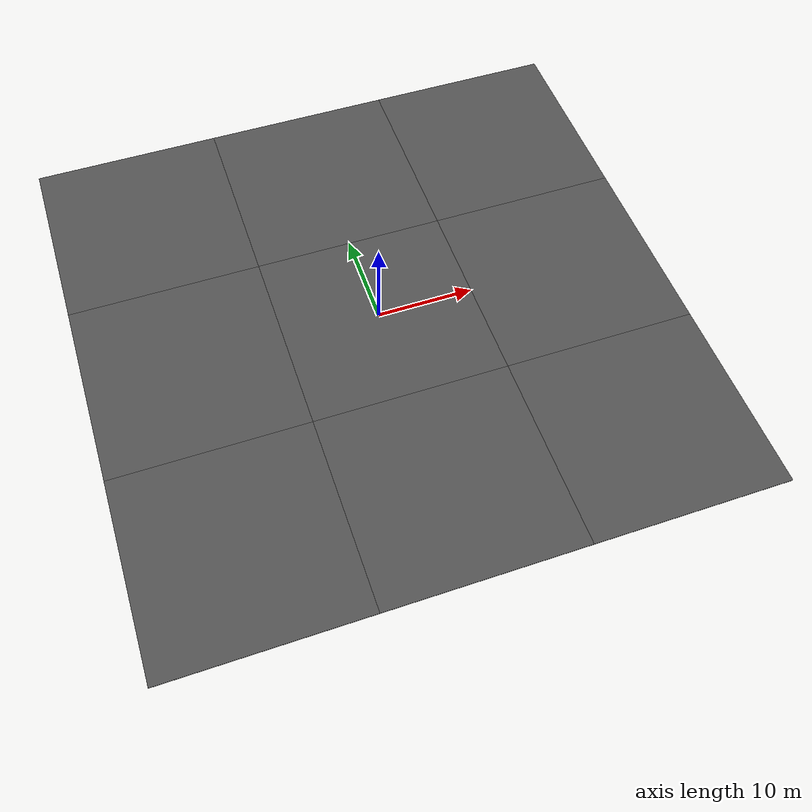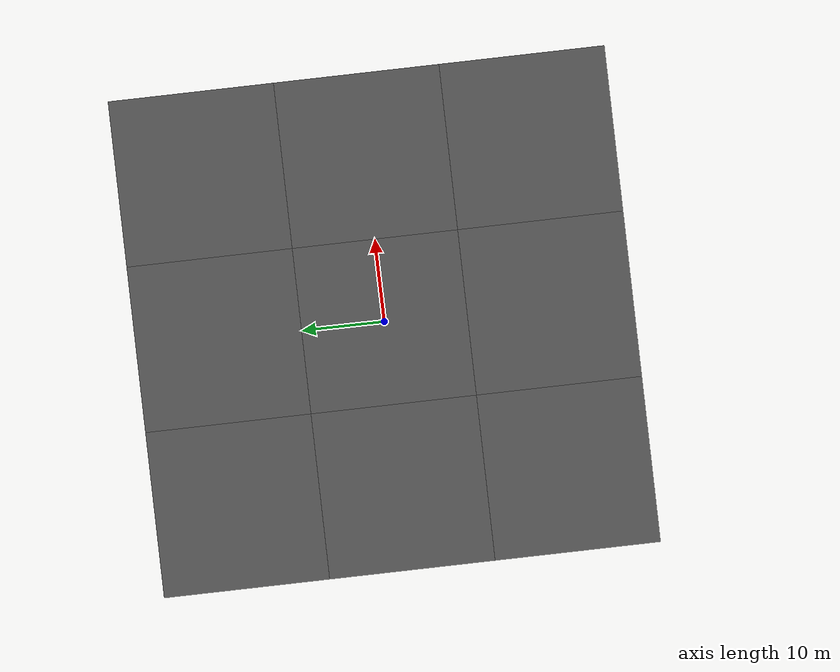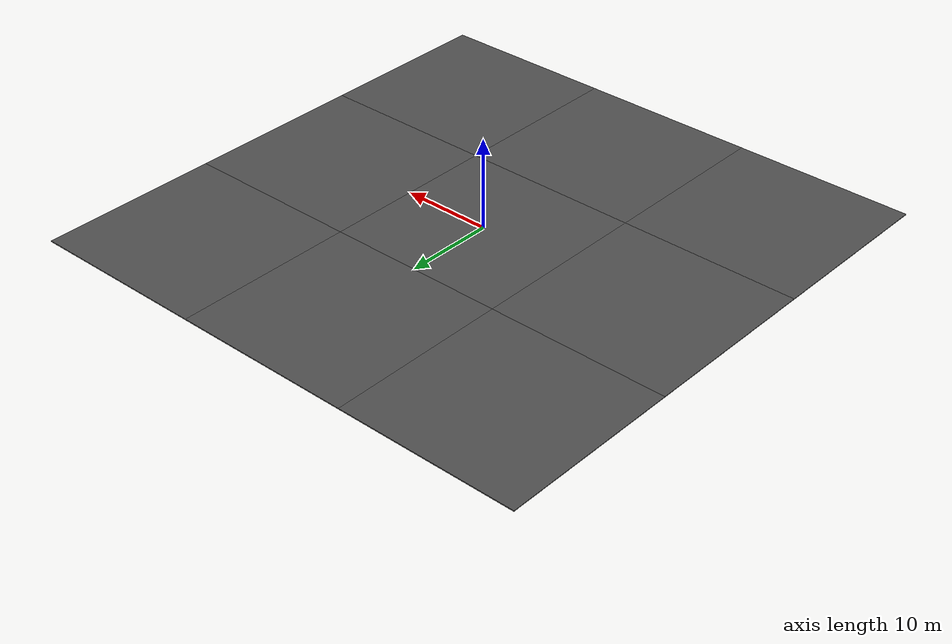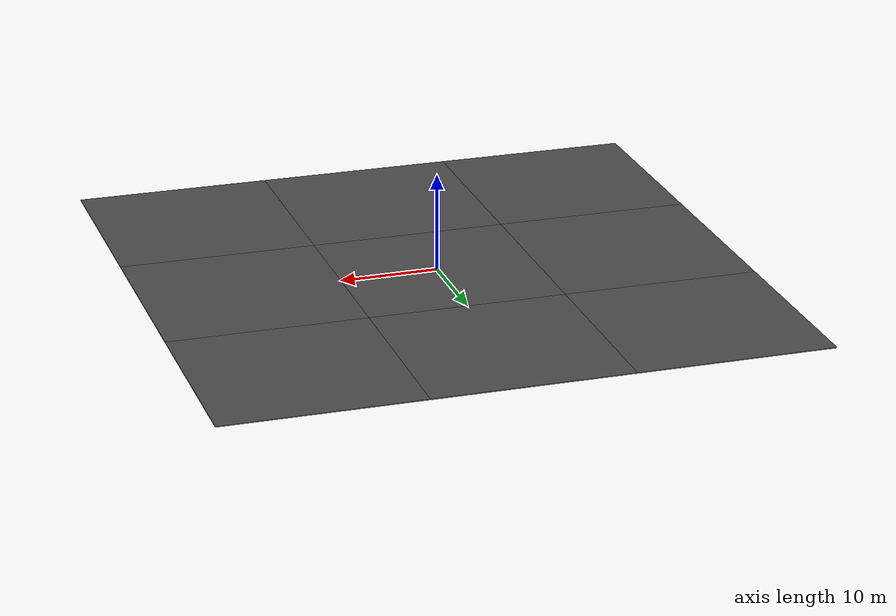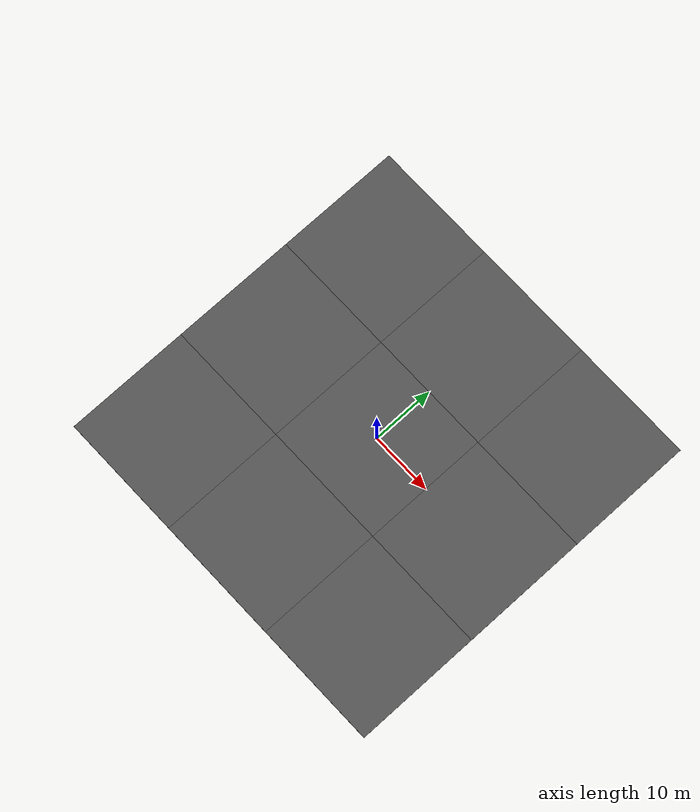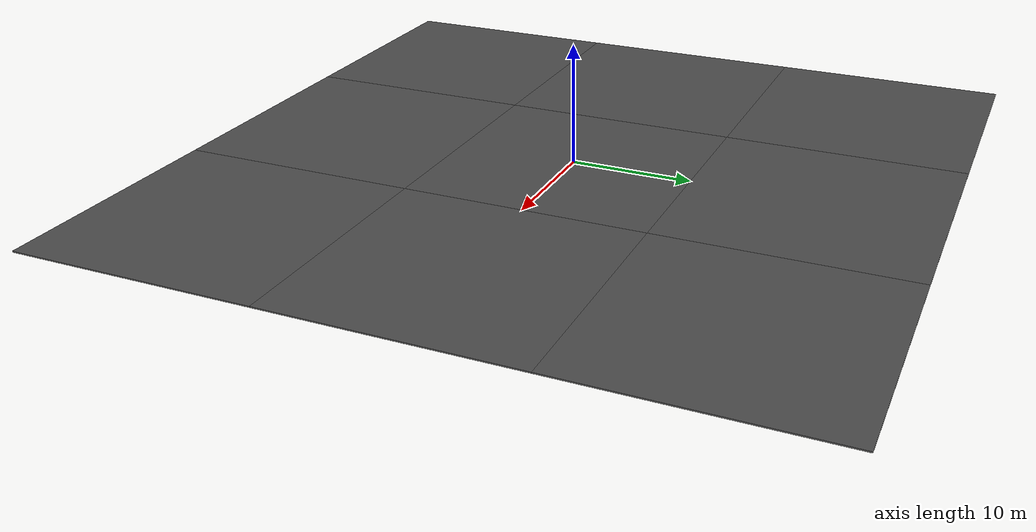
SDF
<sdf version="1.4">
 <world name="default">
  <scene><ambient>0.5 0.5 0.5 1</ambient><background>0.5 0.5 0.5 1</background><shadows>0</shadows></scene>
  <physics type="ode">
   <gravity>0 0 -9.8</gravity>
   <ode>
    <solver><type>quick</type><iters>10</iters><sor>1.3</sor></solver>
    <constraints>
     <cfm>0</cfm>
     <erp>0.2</erp>
     <contact_max_correcting_vel>100</contact_max_correcting_vel>
     <contact_surface_layer>0.001</contact_surface_layer>
    </constraints>
   </ode>
   <real_time_update_rate>250</real_time_update_rate>
   <max_step_size>0.004</max_step_size>
   <real_time_factor>1</real_time_factor>
  </physics>
  <model name="plane1_model">
   <link name="body">
    <collision name="geom_1">
     <geometry><plane><normal>0 0 1</normal><size>1 1</size></plane></geometry>
     <surface>
      <friction><ode><mu>10</mu><mu2>10</mu2><fdir1>0 0 0</fdir1><slip1>0</slip1><slip2>0</slip2></ode></friction>
      <bounce><restitution_coefficient>0</restitution_coefficient><threshold>1e+06</threshold></bounce>
      <contact>
       <ode>
        <soft_cfm>0</soft_cfm>
        <soft_erp>0.2</soft_erp>
        <kp>1e+10</kp>
        <kd>1</kd>
        <max_vel>100</max_vel>
        <min_depth>0.0001</min_depth>
       </ode>
      </contact>
     </surface>
    </collision>
    <visual name="visual_1">
     <geometry><plane><normal>0 0 1</normal><size>1 1</size></plane></geometry>
     <material><script><uri>__default__</uri><name>__default__</name></script></material>
     <cast_shadows>0</cast_shadows>
    </visual>
    <velocity_decay><linear>0</linear><angular>0</angular></velocity_decay>
   </link>
   <static>1</static>
  </model>
  <light name="my_light" type="directional">
   <pose>0 0 30 0 -0 0</pose>
   <diffuse>0.9 0.9 0.9 1</diffuse>
   <specular>0.1 0.1 0.1 1</specular>
   <attenuation><range>20</range></attenuation>
   <direction>0 0 -1</direction>
   <cast_shadows>0</cast_shadows>
  </light>
  <spherical_coordinates>
   <surface_model>EARTH_WGS84</surface_model>
   <latitude_deg>0</latitude_deg>
   <longitude_deg>0</longitude_deg>
   <elevation>0</elevation>
   <heading_deg>0</heading_deg>
  </spherical_coordinates>
  <model name="asphalt_plane_1">
   <static>1</static>
   <link name="link">
    <collision name="collision"><geometry><box><size>20 20 0.1</size></box></geometry></collision>
    <visual name="visual">
     <cast_shadows>0</cast_shadows>
     <geometry><box><size>20 20 0.1</size></box></geometry>
     <material>
      <script>
       <uri>model://asphalt_plane/materials/scripts</uri>
       <uri>model://asphalt_plane/materials/textures</uri>
       <name>vrc/asphalt</name>
      </script>
     </material>
    </visual>
    <velocity_decay><linear>0</linear><angular>0</angular></velocity_decay>
   </link>
   <pose>20 0 0 0 -0 0</pose>
  </model>
  <model name="asphalt_plane_2">
   <static>1</static>
   <link name="link">
    <collision name="collision"><geometry><box><size>20 20 0.1</size></box></geometry></collision>
    <visual name="visual">
     <cast_shadows>0</cast_shadows>
     <geometry><box><size>20 20 0.1</size></box></geometry>
     <material>
      <script>
       <uri>model://asphalt_plane/materials/scripts</uri>
       <uri>model://asphalt_plane/materials/textures</uri>
       <name>vrc/asphalt</name>
      </script>
     </material>
    </visual>
    <velocity_decay><linear>0</linear><angular>0</angular></velocity_decay>
   </link>
   <pose>20 -20 0 0 -0 0</pose>
  </model>
  <model name="asphalt_plane_3">
   <static>1</static>
   <link name="link">
    <collision name="collision"><geometry><box><size>20 20 0.1</size></box></geometry></collision>
    <visual name="visual">
     <cast_shadows>0</cast_shadows>
     <geometry><box><size>20 20 0.1</size></box></geometry>
     <material>
      <script>
       <uri>model://asphalt_plane/materials/scripts</uri>
       <uri>model://asphalt_plane/materials/textures</uri>
       <name>vrc/asphalt</name>
      </script>
     </material>
    </visual>
    <velocity_decay><linear>0</linear><angular>0</angular></velocity_decay>
   </link>
   <pose>20 20 0 0 -0 0</pose>
  </model>
  <model name="asphalt_plane_4">
   <static>1</static>
   <link name="link">
    <collision name="collision"><geometry><box><size>20 20 0.1</size></box></geometry></collision>
    <visual name="visual">
     <cast_shadows>0</cast_shadows>
     <geometry><box><size>20 20 0.1</size></box></geometry>
     <material>
      <script>
       <uri>model://asphalt_plane/materials/scripts</uri>
       <uri>model://asphalt_plane/materials/textures</uri>
       <name>vrc/asphalt</name>
      </script>
     </material>
    </visual>
    <velocity_decay><linear>0</linear><angular>0</angular></velocity_decay>
   </link>
   <pose>0 20 0 0 -0 0</pose>
  </model>
  <model name="asphalt_plane_5">
   <static>1</static>
   <link name="link">
    <collision name="collision"><geometry><box><size>20 20 0.1</size></box></geometry></collision>
    <visual name="visual">
     <cast_shadows>0</cast_shadows>
     <geometry><box><size>20 20 0.1</size></box></geometry>
     <material>
      <script>
       <uri>model://asphalt_plane/materials/scripts</uri>
       <uri>model://asphalt_plane/materials/textures</uri>
       <name>vrc/asphalt</name>
      </script>
     </material>
    </visual>
    <velocity_decay><linear>0</linear><angular>0</angular></velocity_decay>
   </link>
   <pose>-20 20 0 0 -0 0</pose>
  </model>
  <model name="asphalt_plane_6">
   <static>1</static>
   <link name="link">
    <collision name="collision"><geometry><box><size>20 20 0.1</size></box></geometry></collision>
    <visual name="visual">
     <cast_shadows>0</cast_shadows>
     <geometry><box><size>20 20 0.1</size></box></geometry>
     <material>
      <script>
       <uri>model://asphalt_plane/materials/scripts</uri>
       <uri>model://asphalt_plane/materials/textures</uri>
       <name>vrc/asphalt</name>
      </script>
     </material>
    </visual>
    <velocity_decay><linear>0</linear><angular>0</angular></velocity_decay>
   </link>
   <pose>-20 0 0 0 -0 0</pose>
  </model>
  <model name="asphalt_plane_7">
   <static>1</static>
   <link name="link">
    <collision name="collision"><geometry><box><size>20 20 0.1</size></box></geometry></collision>
    <visual name="visual">
     <cast_shadows>0</cast_shadows>
     <geometry><box><size>20 20 0.1</size></box></geometry>
     <material>
      <script>
       <uri>model://asphalt_plane/materials/scripts</uri>
       <uri>model://asphalt_plane/materials/textures</uri>
       <name>vrc/asphalt</name>
      </script>
     </material>
    </visual>
    <velocity_decay><linear>0</linear><angular>0</angular></velocity_decay>
   </link>
   <pose>-20 -20 0 0 -0 0</pose>
  </model>
  <model name="asphalt_plane_8">
   <static>1</static>
   <link name="link">
    <collision name="collision"><geometry><box><size>20 20 0.1</size></box></geometry></collision>
    <visual name="visual">
     <cast_shadows>0</cast_shadows>
     <geometry><box><size>20 20 0.1</size></box></geometry>
     <material>
      <script>
       <uri>model://asphalt_plane/materials/scripts</uri>
       <uri>model://asphalt_plane/materials/textures</uri>
       <name>vrc/asphalt</name>
      </script>
     </material>
    </visual>
    <velocity_decay><linear>0</linear><angular>0</angular></velocity_decay>
   </link>
   <pose>0 -20 0 0 -0 0</pose>
  </model>
  <model name="asphalt_plane_9">
   <static>1</static>
   <link name="link">
    <collision name="collision"><geometry><box><size>20 20 0.1</size></box></geometry></collision>
    <visual name="visual">
     <cast_shadows>0</cast_shadows>
     <geometry><box><size>20 20 0.1</size></box></geometry>
     <material>
      <script>
       <uri>model://asphalt_plane/materials/scripts</uri>
       <uri>model://asphalt_plane/materials/textures</uri>
       <name>vrc/asphalt</name>
      </script>
     </material>
    </visual>
    <velocity_decay><linear>0</linear><angular>0</angular></velocity_decay>
   </link>
  </model>
 </world>
</sdf>
